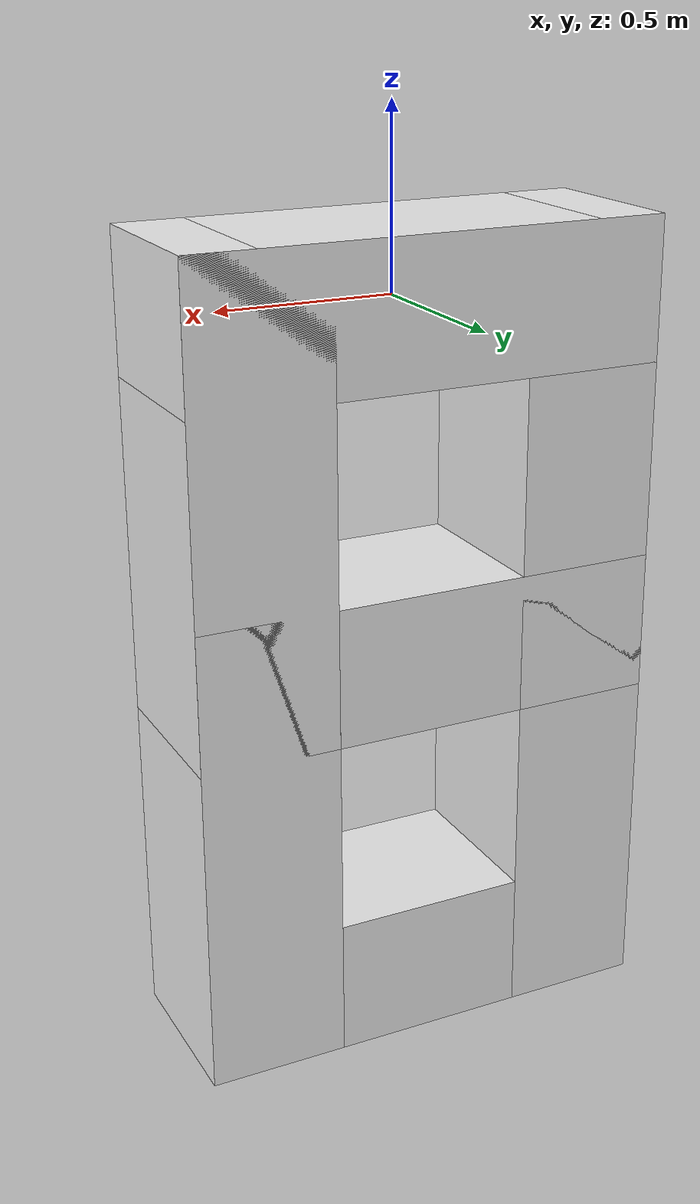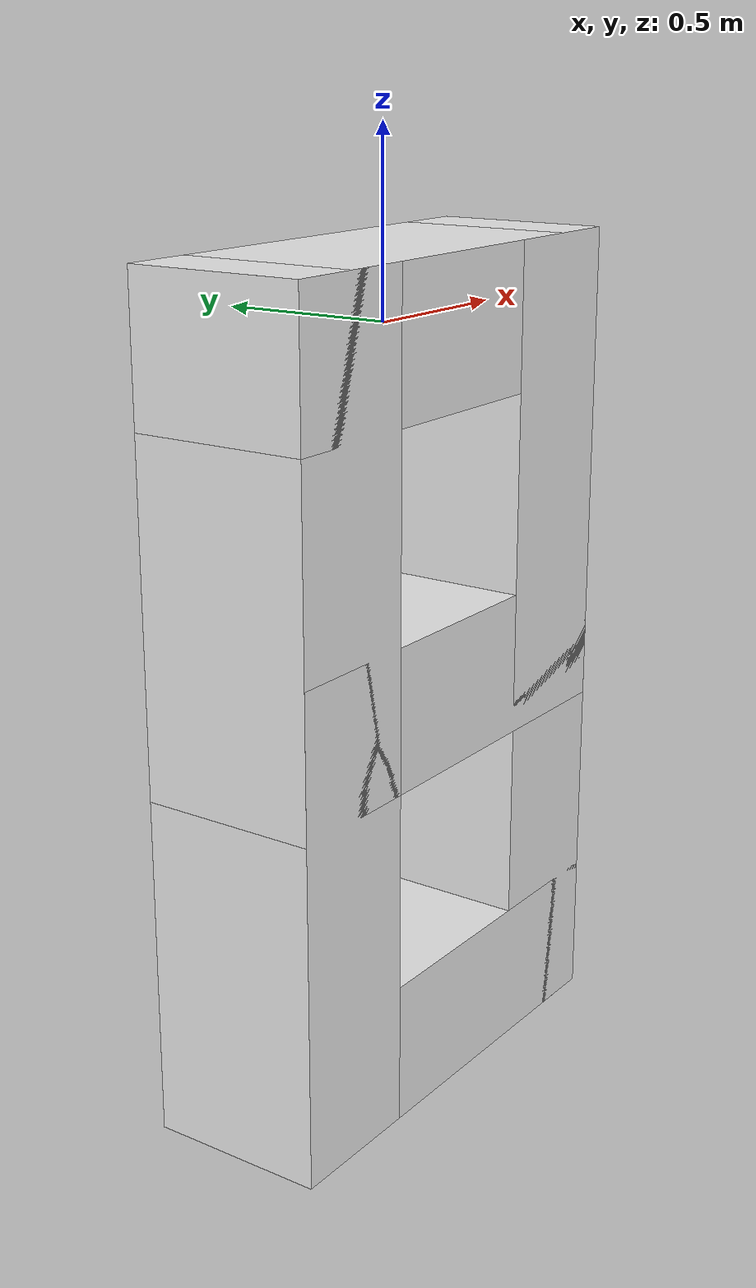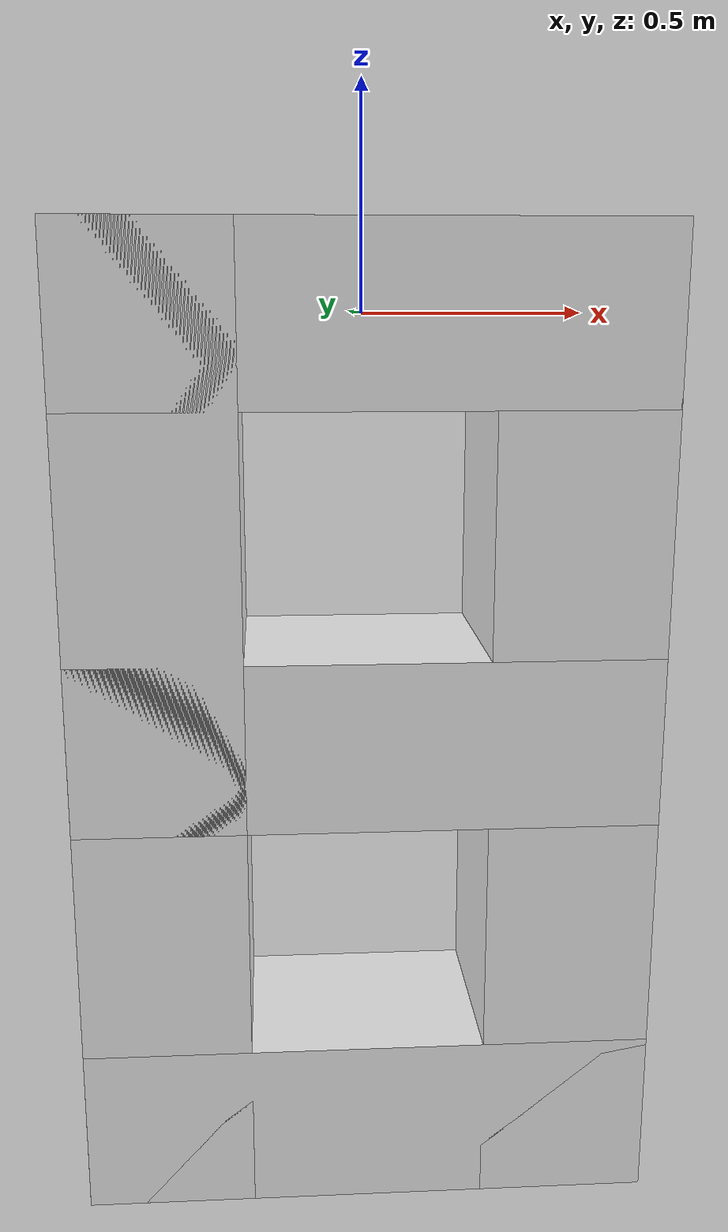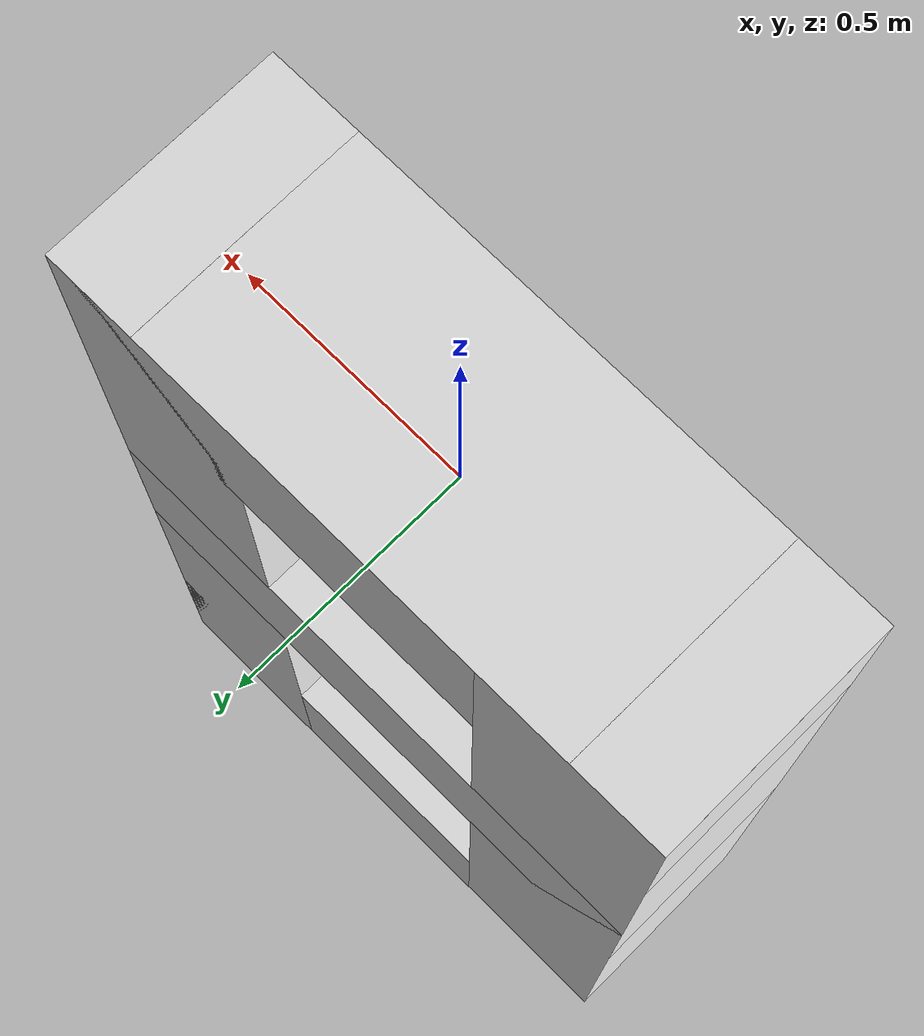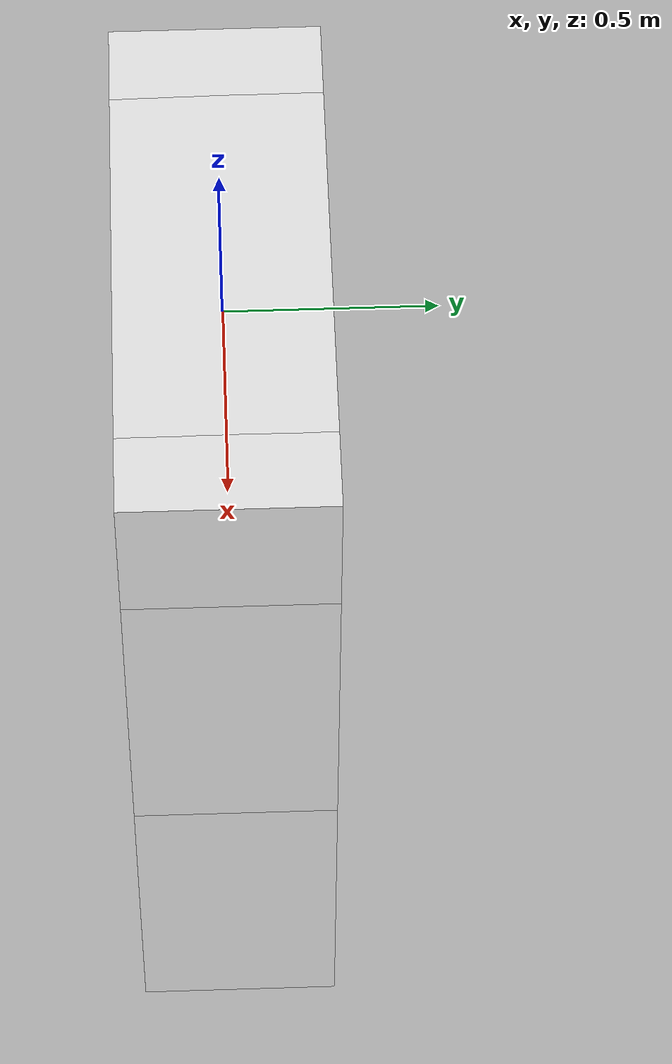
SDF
<?xml version="1.0" ?>
<sdf version="1.7">
    <model name="eight">
			<static>true</static>

			<!-- creating a 7 segment display -->

      <link name="a">
				<visual name="visual">
					<geometry>
						<box>
							<size>1.357 0.5 0.4</size>
						</box>
					</geometry>
					<material>
						<script>
							<uri>file://media/materials/scripts/gazebo.material</uri>
							<name>Gazebo/White</name>
						</script>
					</material>
				</visual>
      </link>

			<link name="b">
				<pose>0.4785 0 -0.4785 0 1.5707 0</pose>
				<visual name="visual">
					<geometry>
						<box>
							<size>1.357 0.5 0.4</size>
						</box>
					</geometry>
					<material>
						<script>
							<uri>file://media/materials/scripts/gazebo.material</uri>
							<name>Gazebo/White</name>
						</script>
					</material>
				</visual>
			</link>

			<link name="c">
				<pose>0.4785 0 -1.4355 0 1.5707 0</pose>
				<visual name="visual">
					<geometry>
						<box>
							<size>1.357 0.5 0.4</size>
						</box>
					</geometry>
					<material>
						<script>
							<uri>file://media/materials/scripts/gazebo.material</uri>
							<name>Gazebo/White</name>
						</script>
					</material>
				</visual>
			</link>

			<link name="d">
				<pose>0 0 -1.914 0 0 0</pose>
				<visual name="visual">
					<geometry>
						<box>
							<size>1.357 0.5 0.4</size>
						</box>
					</geometry>
					<material>
						<script>
							<uri>file://media/materials/scripts/gazebo.material</uri>
							<name>Gazebo/White</name>
						</script>
					</material>
				</visual>
			</link>

			<link name="e">
				<pose>-0.4785 0 -1.4355 0 -1.5707 0</pose>
				<visual name="visual">
					<geometry>
						<box>
							<size>1.357 0.5 0.4</size>
						</box>
					</geometry>
					<material>
						<script>
							<uri>file://media/materials/scripts/gazebo.material</uri>
							<name>Gazebo/White</name>
						</script>
					</material>
				</visual>
			</link>

			<link name="f">
				<pose>-0.4785 0 -0.4785 0 -1.5707 0</pose>
				<visual name="visual">
					<geometry>
						<box>
							<size>1.357 0.5 0.4</size>
						</box>
					</geometry>
					<material>
						<script>
							<uri>file://media/materials/scripts/gazebo.material</uri>
							<name>Gazebo/White</name>
						</script>
					</material>
				</visual>
			</link>

			<link name="g">
				<pose>0 0 -0.957 0 0 0</pose>
				<visual name="visual">
					<geometry>
						<box>
							<size>1.357 0.5 0.4</size>
						</box>
					</geometry>
					<material>
						<script>
							<uri>file://media/materials/scripts/gazebo.material</uri>
							<name>Gazebo/White</name>
						</script>
					</material>
				</visual>
			</link>

    </model>
</sdf>
